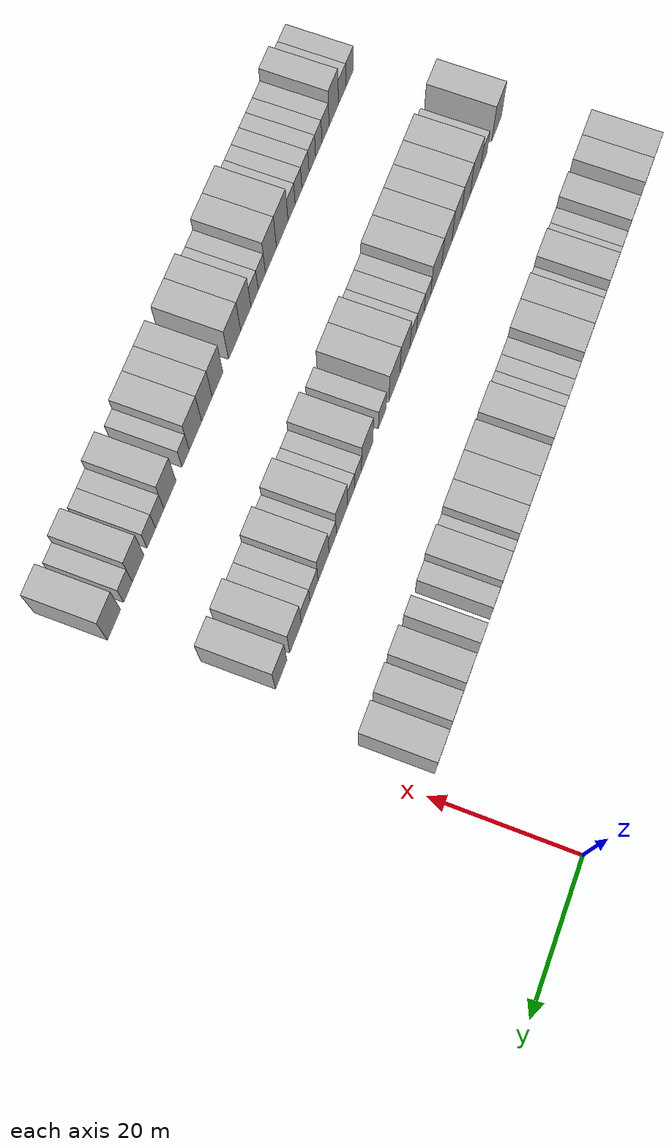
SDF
<sdf version="1.6">
 <world name="default">
  <model name="building_65">
   <static>1</static>
   <pose>25.0000 -90.0520 0 0.000000 0.000000 0.000000</pose>
   <link name="link">
    <pose>0 0 4.50 0 0 0</pose>
    <collision name="collision"><geometry><box><size>10.0000 4.0459 9.0000</size></box></geometry></collision>
    <visual name="visual">
     <cast_shadows>0</cast_shadows>
     <geometry><box><size>10.0000 4.0459 9.0000</size></box></geometry>
     <material>
      <script>
       <uri>model://HANNAS_wall/materials/scripts</uri>
       <uri>model://HANNAS_wall/materials/textures</uri>
       <name>vrc/HANNAS_wall</name>
      </script>
     </material>
    </visual>
   </link>
  </model>
  <model name="building_66">
   <static>1</static>
   <pose>25.0000 -86.0623 0 0.000000 0.000000 0.000000</pose>
   <link name="link">
    <pose>0 0 4.50 0 0 0</pose>
    <collision name="collision"><geometry><box><size>10.0000 3.9334 9.0000</size></box></geometry></collision>
    <visual name="visual">
     <cast_shadows>0</cast_shadows>
     <geometry><box><size>10.0000 3.9334 9.0000</size></box></geometry>
     <material>
      <script>
       <uri>model://HANNAS_wall/materials/scripts</uri>
       <uri>model://HANNAS_wall/materials/textures</uri>
       <name>vrc/HANNAS_wall</name>
      </script>
     </material>
    </visual>
   </link>
  </model>
  <model name="building_67">
   <static>1</static>
   <pose>25.0000 -80.1384 0 0.000000 0.000000 0.000000</pose>
   <link name="link">
    <pose>0 0 4.50 0 0 0</pose>
    <collision name="collision"><geometry><box><size>10.0000 3.9143 9.0000</size></box></geometry></collision>
    <visual name="visual">
     <cast_shadows>0</cast_shadows>
     <geometry><box><size>10.0000 3.9143 9.0000</size></box></geometry>
     <material>
      <script>
       <uri>model://HANNAS_wall/materials/scripts</uri>
       <uri>model://HANNAS_wall/materials/textures</uri>
       <name>vrc/HANNAS_wall</name>
      </script>
     </material>
    </visual>
   </link>
  </model>
  <model name="building_68">
   <static>1</static>
   <pose>25.0000 -76.9751 0 0.000000 0.000000 0.000000</pose>
   <link name="link">
    <pose>0 0 3.00 0 0 0</pose>
    <collision name="collision"><geometry><box><size>10.0000 2.4124 6.0000</size></box></geometry></collision>
    <visual name="visual">
     <cast_shadows>0</cast_shadows>
     <geometry><box><size>10.0000 2.4124 6.0000</size></box></geometry>
     <material>
      <script>
       <uri>model://HANNAS_wall/materials/scripts</uri>
       <uri>model://HANNAS_wall/materials/textures</uri>
       <name>vrc/HANNAS_wall</name>
      </script>
     </material>
    </visual>
   </link>
  </model>
  <model name="building_69">
   <static>1</static>
   <pose>25.0000 -74.5090 0 0.000000 0.000000 0.000000</pose>
   <link name="link">
    <pose>0 0 3.00 0 0 0</pose>
    <collision name="collision"><geometry><box><size>10.0000 2.5198 6.0000</size></box></geometry></collision>
    <visual name="visual">
     <cast_shadows>0</cast_shadows>
     <geometry><box><size>10.0000 2.5198 6.0000</size></box></geometry>
     <material>
      <script>
       <uri>model://HANNAS_wall/materials/scripts</uri>
       <uri>model://HANNAS_wall/materials/textures</uri>
       <name>vrc/HANNAS_wall</name>
      </script>
     </material>
    </visual>
   </link>
  </model>
  <model name="building_70">
   <static>1</static>
   <pose>25.0000 -71.1109 0 0.000000 0.000000 0.000000</pose>
   <link name="link">
    <pose>0 0 4.50 0 0 0</pose>
    <collision name="collision"><geometry><box><size>10.0000 4.2764 9.0000</size></box></geometry></collision>
    <visual name="visual">
     <cast_shadows>0</cast_shadows>
     <geometry><box><size>10.0000 4.2764 9.0000</size></box></geometry>
     <material>
      <script>
       <uri>model://HANNAS_wall/materials/scripts</uri>
       <uri>model://HANNAS_wall/materials/textures</uri>
       <name>vrc/HANNAS_wall</name>
      </script>
     </material>
    </visual>
   </link>
  </model>
  <model name="building_71">
   <static>1</static>
   <pose>25.0000 -67.7124 0 0.000000 0.000000 0.000000</pose>
   <link name="link">
    <pose>0 0 3.00 0 0 0</pose>
    <collision name="collision"><geometry><box><size>10.0000 2.5205 6.0000</size></box></geometry></collision>
    <visual name="visual">
     <cast_shadows>0</cast_shadows>
     <geometry><box><size>10.0000 2.5205 6.0000</size></box></geometry>
     <material>
      <script>
       <uri>model://HANNAS_wall/materials/scripts</uri>
       <uri>model://HANNAS_wall/materials/textures</uri>
       <name>vrc/HANNAS_wall</name>
      </script>
     </material>
    </visual>
   </link>
  </model>
  <model name="building_72">
   <static>1</static>
   <pose>25.0000 -64.5187 0 0.000000 0.000000 0.000000</pose>
   <link name="link">
    <pose>0 0 4.50 0 0 0</pose>
    <collision name="collision"><geometry><box><size>10.0000 3.8669 9.0000</size></box></geometry></collision>
    <visual name="visual">
     <cast_shadows>0</cast_shadows>
     <geometry><box><size>10.0000 3.8669 9.0000</size></box></geometry>
     <material>
      <script>
       <uri>model://HANNAS_wall/materials/scripts</uri>
       <uri>model://HANNAS_wall/materials/textures</uri>
       <name>vrc/HANNAS_wall</name>
      </script>
     </material>
    </visual>
   </link>
  </model>
  <model name="building_73">
   <static>1</static>
   <pose>25.0000 -60.4254 0 0.000000 0.000000 0.000000</pose>
   <link name="link">
    <pose>0 0 4.50 0 0 0</pose>
    <collision name="collision"><geometry><box><size>10.0000 4.3197 9.0000</size></box></geometry></collision>
    <visual name="visual">
     <cast_shadows>0</cast_shadows>
     <geometry><box><size>10.0000 4.3197 9.0000</size></box></geometry>
     <material>
      <script>
       <uri>model://HANNAS_wall/materials/scripts</uri>
       <uri>model://HANNAS_wall/materials/textures</uri>
       <name>vrc/HANNAS_wall</name>
      </script>
     </material>
    </visual>
   </link>
  </model>
  <model name="building_74">
   <static>1</static>
   <pose>25.0000 -56.9800 0 0.000000 0.000000 0.000000</pose>
   <link name="link">
    <pose>0 0 3.00 0 0 0</pose>
    <collision name="collision"><geometry><box><size>10.0000 2.5711 6.0000</size></box></geometry></collision>
    <visual name="visual">
     <cast_shadows>0</cast_shadows>
     <geometry><box><size>10.0000 2.5711 6.0000</size></box></geometry>
     <material>
      <script>
       <uri>model://HANNAS_wall/materials/scripts</uri>
       <uri>model://HANNAS_wall/materials/textures</uri>
       <name>vrc/HANNAS_wall</name>
      </script>
     </material>
    </visual>
   </link>
  </model>
  <model name="building_75">
   <static>1</static>
   <pose>25.0000 -54.4780 0 0.000000 0.000000 0.000000</pose>
   <link name="link">
    <pose>0 0 3.00 0 0 0</pose>
    <collision name="collision"><geometry><box><size>10.0000 2.4328 6.0000</size></box></geometry></collision>
    <visual name="visual">
     <cast_shadows>0</cast_shadows>
     <geometry><box><size>10.0000 2.4328 6.0000</size></box></geometry>
     <material>
      <script>
       <uri>model://HANNAS_wall/materials/scripts</uri>
       <uri>model://HANNAS_wall/materials/textures</uri>
       <name>vrc/HANNAS_wall</name>
      </script>
     </material>
    </visual>
   </link>
  </model>
  <model name="building_76">
   <static>1</static>
   <pose>25.0000 -51.8587 0 0.000000 0.000000 0.000000</pose>
   <link name="link">
    <pose>0 0 3.00 0 0 0</pose>
    <collision name="collision"><geometry><box><size>10.0000 2.8059 6.0000</size></box></geometry></collision>
    <visual name="visual">
     <cast_shadows>0</cast_shadows>
     <geometry><box><size>10.0000 2.8059 6.0000</size></box></geometry>
     <material>
      <script>
       <uri>model://HANNAS_wall/materials/scripts</uri>
       <uri>model://HANNAS_wall/materials/textures</uri>
       <name>vrc/HANNAS_wall</name>
      </script>
     </material>
    </visual>
   </link>
  </model>
  <model name="building_77">
   <static>1</static>
   <pose>25.0000 -48.2150 0 0.000000 0.000000 0.000000</pose>
   <link name="link">
    <pose>0 0 4.50 0 0 0</pose>
    <collision name="collision"><geometry><box><size>10.0000 4.4815 9.0000</size></box></geometry></collision>
    <visual name="visual">
     <cast_shadows>0</cast_shadows>
     <geometry><box><size>10.0000 4.4815 9.0000</size></box></geometry>
     <material>
      <script>
       <uri>model://HANNAS_wall/materials/scripts</uri>
       <uri>model://HANNAS_wall/materials/textures</uri>
       <name>vrc/HANNAS_wall</name>
      </script>
     </material>
    </visual>
   </link>
  </model>
  <model name="building_78">
   <static>1</static>
   <pose>25.0000 -42.8183 0 0.000000 0.000000 0.000000</pose>
   <link name="link">
    <pose>0 0 4.50 0 0 0</pose>
    <collision name="collision"><geometry><box><size>10.0000 4.3119 9.0000</size></box></geometry></collision>
    <visual name="visual">
     <cast_shadows>0</cast_shadows>
     <geometry><box><size>10.0000 4.3119 9.0000</size></box></geometry>
     <material>
      <script>
       <uri>model://HANNAS_wall/materials/scripts</uri>
       <uri>model://HANNAS_wall/materials/textures</uri>
       <name>vrc/HANNAS_wall</name>
      </script>
     </material>
    </visual>
   </link>
  </model>
  <model name="building_79">
   <static>1</static>
   <pose>25.0000 -38.6219 0 0.000000 0.000000 0.000000</pose>
   <link name="link">
    <pose>0 0 4.50 0 0 0</pose>
    <collision name="collision"><geometry><box><size>10.0000 4.0809 9.0000</size></box></geometry></collision>
    <visual name="visual">
     <cast_shadows>0</cast_shadows>
     <geometry><box><size>10.0000 4.0809 9.0000</size></box></geometry>
     <material>
      <script>
       <uri>model://HANNAS_wall/materials/scripts</uri>
       <uri>model://HANNAS_wall/materials/textures</uri>
       <name>vrc/HANNAS_wall</name>
      </script>
     </material>
    </visual>
   </link>
  </model>
  <model name="building_80">
   <static>1</static>
   <pose>25.0000 -34.6649 0 0.000000 0.000000 0.000000</pose>
   <link name="link">
    <pose>0 0 4.50 0 0 0</pose>
    <collision name="collision"><geometry><box><size>10.0000 3.8331 9.0000</size></box></geometry></collision>
    <visual name="visual">
     <cast_shadows>0</cast_shadows>
     <geometry><box><size>10.0000 3.8331 9.0000</size></box></geometry>
     <material>
      <script>
       <uri>model://HANNAS_wall/materials/scripts</uri>
       <uri>model://HANNAS_wall/materials/textures</uri>
       <name>vrc/HANNAS_wall</name>
      </script>
     </material>
    </visual>
   </link>
  </model>
  <model name="building_81">
   <static>1</static>
   <pose>25.0000 -31.5385 0 0.000000 0.000000 0.000000</pose>
   <link name="link">
    <pose>0 0 3.00 0 0 0</pose>
    <collision name="collision"><geometry><box><size>10.0000 2.4197 6.0000</size></box></geometry></collision>
    <visual name="visual">
     <cast_shadows>0</cast_shadows>
     <geometry><box><size>10.0000 2.4197 6.0000</size></box></geometry>
     <material>
      <script>
       <uri>model://HANNAS_wall/materials/scripts</uri>
       <uri>model://HANNAS_wall/materials/textures</uri>
       <name>vrc/HANNAS_wall</name>
      </script>
     </material>
    </visual>
   </link>
  </model>
  <model name="building_82">
   <static>1</static>
   <pose>25.0000 -28.3246 0 0.000000 0.000000 0.000000</pose>
   <link name="link">
    <pose>0 0 4.50 0 0 0</pose>
    <collision name="collision"><geometry><box><size>10.0000 4.0081 9.0000</size></box></geometry></collision>
    <visual name="visual">
     <cast_shadows>0</cast_shadows>
     <geometry><box><size>10.0000 4.0081 9.0000</size></box></geometry>
     <material>
      <script>
       <uri>model://HANNAS_wall/materials/scripts</uri>
       <uri>model://HANNAS_wall/materials/textures</uri>
       <name>vrc/HANNAS_wall</name>
      </script>
     </material>
    </visual>
   </link>
  </model>
  <model name="building_83">
   <static>1</static>
   <pose>25.0000 -24.9534 0 0.000000 0.000000 0.000000</pose>
   <link name="link">
    <pose>0 0 3.00 0 0 0</pose>
    <collision name="collision"><geometry><box><size>10.0000 2.7344 6.0000</size></box></geometry></collision>
    <visual name="visual">
     <cast_shadows>0</cast_shadows>
     <geometry><box><size>10.0000 2.7344 6.0000</size></box></geometry>
     <material>
      <script>
       <uri>model://HANNAS_wall/materials/scripts</uri>
       <uri>model://HANNAS_wall/materials/textures</uri>
       <name>vrc/HANNAS_wall</name>
      </script>
     </material>
    </visual>
   </link>
  </model>
  <model name="building_84">
   <static>1</static>
   <pose>25.0000 -20.2362 0 0.000000 0.000000 0.000000</pose>
   <link name="link">
    <pose>0 0 3.00 0 0 0</pose>
    <collision name="collision"><geometry><box><size>10.0000 2.7000 6.0000</size></box></geometry></collision>
    <visual name="visual">
     <cast_shadows>0</cast_shadows>
     <geometry><box><size>10.0000 2.7000 6.0000</size></box></geometry>
     <material>
      <script>
       <uri>model://HANNAS_wall/materials/scripts</uri>
       <uri>model://HANNAS_wall/materials/textures</uri>
       <name>vrc/HANNAS_wall</name>
      </script>
     </material>
    </visual>
   </link>
  </model>
  <model name="building_85">
   <static>1</static>
   <pose>25.0000 -14.9564 0 0.000000 0.000000 0.000000</pose>
   <link name="link">
    <pose>0 0 4.50 0 0 0</pose>
    <collision name="collision"><geometry><box><size>10.0000 3.8596 9.0000</size></box></geometry></collision>
    <visual name="visual">
     <cast_shadows>0</cast_shadows>
     <geometry><box><size>10.0000 3.8596 9.0000</size></box></geometry>
     <material>
      <script>
       <uri>model://HANNAS_wall/materials/scripts</uri>
       <uri>model://HANNAS_wall/materials/textures</uri>
       <name>vrc/HANNAS_wall</name>
      </script>
     </material>
    </visual>
   </link>
  </model>
  <model name="building_86">
   <static>1</static>
   <pose>25.0000 -10.0906 0 0.000000 0.000000 0.000000</pose>
   <link name="link">
    <pose>0 0 4.50 0 0 0</pose>
    <collision name="collision"><geometry><box><size>10.0000 3.8721 9.0000</size></box></geometry></collision>
    <visual name="visual">
     <cast_shadows>0</cast_shadows>
     <geometry><box><size>10.0000 3.8721 9.0000</size></box></geometry>
     <material>
      <script>
       <uri>model://HANNAS_wall/materials/scripts</uri>
       <uri>model://HANNAS_wall/materials/textures</uri>
       <name>vrc/HANNAS_wall</name>
      </script>
     </material>
    </visual>
   </link>
  </model>
  <model name="building_87">
   <static>1</static>
   <pose>25.0000 -5.0628 0 0.000000 0.000000 0.000000</pose>
   <link name="link">
    <pose>0 0 4.50 0 0 0</pose>
    <collision name="collision"><geometry><box><size>10.0000 4.1833 9.0000</size></box></geometry></collision>
    <visual name="visual">
     <cast_shadows>0</cast_shadows>
     <geometry><box><size>10.0000 4.1833 9.0000</size></box></geometry>
     <material>
      <script>
       <uri>model://HANNAS_wall/materials/scripts</uri>
       <uri>model://HANNAS_wall/materials/textures</uri>
       <name>vrc/HANNAS_wall</name>
      </script>
     </material>
    </visual>
   </link>
  </model>
  <model name="building_251">
   <static>1</static>
   <pose>47.0000 -90.0598 0 0.000000 0.000000 0.000000</pose>
   <link name="link">
    <pose>0 0 4.50 0 0 0</pose>
    <collision name="collision"><geometry><box><size>10.0000 4.2010 9.0000</size></box></geometry></collision>
    <visual name="visual">
     <cast_shadows>0</cast_shadows>
     <geometry><box><size>10.0000 4.2010 9.0000</size></box></geometry>
     <material>
      <script>
       <uri>model://HANNAS_wall/materials/scripts</uri>
       <uri>model://HANNAS_wall/materials/textures</uri>
       <name>vrc/HANNAS_wall</name>
      </script>
     </material>
    </visual>
   </link>
  </model>
  <model name="building_252">
   <static>1</static>
   <pose>47.0000 -84.5554 0 0.000000 0.000000 0.000000</pose>
   <link name="link">
    <pose>0 0 3.00 0 0 0</pose>
    <collision name="collision"><geometry><box><size>10.0000 2.8078 6.0000</size></box></geometry></collision>
    <visual name="visual">
     <cast_shadows>0</cast_shadows>
     <geometry><box><size>10.0000 2.8078 6.0000</size></box></geometry>
     <material>
      <script>
       <uri>model://HANNAS_wall/materials/scripts</uri>
       <uri>model://HANNAS_wall/materials/textures</uri>
       <name>vrc/HANNAS_wall</name>
      </script>
     </material>
    </visual>
   </link>
  </model>
  <model name="building_253">
   <static>1</static>
   <pose>47.0000 -81.0309 0 0.000000 0.000000 0.000000</pose>
   <link name="link">
    <pose>0 0 4.50 0 0 0</pose>
    <collision name="collision"><geometry><box><size>10.0000 4.2413 9.0000</size></box></geometry></collision>
    <visual name="visual">
     <cast_shadows>0</cast_shadows>
     <geometry><box><size>10.0000 4.2413 9.0000</size></box></geometry>
     <material>
      <script>
       <uri>model://HANNAS_wall/materials/scripts</uri>
       <uri>model://HANNAS_wall/materials/textures</uri>
       <name>vrc/HANNAS_wall</name>
      </script>
     </material>
    </visual>
   </link>
  </model>
  <model name="building_254">
   <static>1</static>
   <pose>47.0000 -76.9979 0 0.000000 0.000000 0.000000</pose>
   <link name="link">
    <pose>0 0 4.50 0 0 0</pose>
    <collision name="collision"><geometry><box><size>10.0000 3.8247 9.0000</size></box></geometry></collision>
    <visual name="visual">
     <cast_shadows>0</cast_shadows>
     <geometry><box><size>10.0000 3.8247 9.0000</size></box></geometry>
     <material>
      <script>
       <uri>model://HANNAS_wall/materials/scripts</uri>
       <uri>model://HANNAS_wall/materials/textures</uri>
       <name>vrc/HANNAS_wall</name>
      </script>
     </material>
    </visual>
   </link>
  </model>
  <model name="building_255">
   <static>1</static>
   <pose>47.0000 -73.2284 0 0.000000 0.000000 0.000000</pose>
   <link name="link">
    <pose>0 0 4.50 0 0 0</pose>
    <collision name="collision"><geometry><box><size>10.0000 3.7142 9.0000</size></box></geometry></collision>
    <visual name="visual">
     <cast_shadows>0</cast_shadows>
     <geometry><box><size>10.0000 3.7142 9.0000</size></box></geometry>
     <material>
      <script>
       <uri>model://HANNAS_wall/materials/scripts</uri>
       <uri>model://HANNAS_wall/materials/textures</uri>
       <name>vrc/HANNAS_wall</name>
      </script>
     </material>
    </visual>
   </link>
  </model>
  <model name="building_256">
   <static>1</static>
   <pose>47.0000 -69.2564 0 0.000000 0.000000 0.000000</pose>
   <link name="link">
    <pose>0 0 4.50 0 0 0</pose>
    <collision name="collision"><geometry><box><size>10.0000 4.2298 9.0000</size></box></geometry></collision>
    <visual name="visual">
     <cast_shadows>0</cast_shadows>
     <geometry><box><size>10.0000 4.2298 9.0000</size></box></geometry>
     <material>
      <script>
       <uri>model://HANNAS_wall/materials/scripts</uri>
       <uri>model://HANNAS_wall/materials/textures</uri>
       <name>vrc/HANNAS_wall</name>
      </script>
     </material>
    </visual>
   </link>
  </model>
  <model name="building_257">
   <static>1</static>
   <pose>47.0000 -64.9734 0 0.000000 0.000000 0.000000</pose>
   <link name="link">
    <pose>0 0 4.50 0 0 0</pose>
    <collision name="collision"><geometry><box><size>10.0000 4.3362 9.0000</size></box></geometry></collision>
    <visual name="visual">
     <cast_shadows>0</cast_shadows>
     <geometry><box><size>10.0000 4.3362 9.0000</size></box></geometry>
     <material>
      <script>
       <uri>model://HANNAS_wall/materials/scripts</uri>
       <uri>model://HANNAS_wall/materials/textures</uri>
       <name>vrc/HANNAS_wall</name>
      </script>
     </material>
    </visual>
   </link>
  </model>
  <model name="building_258">
   <static>1</static>
   <pose>47.0000 -61.5240 0 0.000000 0.000000 0.000000</pose>
   <link name="link">
    <pose>0 0 3.00 0 0 0</pose>
    <collision name="collision"><geometry><box><size>10.0000 2.5626 6.0000</size></box></geometry></collision>
    <visual name="visual">
     <cast_shadows>0</cast_shadows>
     <geometry><box><size>10.0000 2.5626 6.0000</size></box></geometry>
     <material>
      <script>
       <uri>model://HANNAS_wall/materials/scripts</uri>
       <uri>model://HANNAS_wall/materials/textures</uri>
       <name>vrc/HANNAS_wall</name>
      </script>
     </material>
    </visual>
   </link>
  </model>
  <model name="building_259">
   <static>1</static>
   <pose>47.0000 -58.7521 0 0.000000 0.000000 0.000000</pose>
   <link name="link">
    <pose>0 0 3.00 0 0 0</pose>
    <collision name="collision"><geometry><box><size>10.0000 2.9813 6.0000</size></box></geometry></collision>
    <visual name="visual">
     <cast_shadows>0</cast_shadows>
     <geometry><box><size>10.0000 2.9813 6.0000</size></box></geometry>
     <material>
      <script>
       <uri>model://HANNAS_wall/materials/scripts</uri>
       <uri>model://HANNAS_wall/materials/textures</uri>
       <name>vrc/HANNAS_wall</name>
      </script>
     </material>
    </visual>
   </link>
  </model>
  <model name="building_260">
   <static>1</static>
   <pose>47.0000 -55.9592 0 0.000000 0.000000 0.000000</pose>
   <link name="link">
    <pose>0 0 3.00 0 0 0</pose>
    <collision name="collision"><geometry><box><size>10.0000 2.6045 6.0000</size></box></geometry></collision>
    <visual name="visual">
     <cast_shadows>0</cast_shadows>
     <geometry><box><size>10.0000 2.6045 6.0000</size></box></geometry>
     <material>
      <script>
       <uri>model://HANNAS_wall/materials/scripts</uri>
       <uri>model://HANNAS_wall/materials/textures</uri>
       <name>vrc/HANNAS_wall</name>
      </script>
     </material>
    </visual>
   </link>
  </model>
  <model name="building_261">
   <static>1</static>
   <pose>47.0000 -52.7284 0 0.000000 0.000000 0.000000</pose>
   <link name="link">
    <pose>0 0 4.50 0 0 0</pose>
    <collision name="collision"><geometry><box><size>10.0000 3.8572 9.0000</size></box></geometry></collision>
    <visual name="visual">
     <cast_shadows>0</cast_shadows>
     <geometry><box><size>10.0000 3.8572 9.0000</size></box></geometry>
     <material>
      <script>
       <uri>model://HANNAS_wall/materials/scripts</uri>
       <uri>model://HANNAS_wall/materials/textures</uri>
       <name>vrc/HANNAS_wall</name>
      </script>
     </material>
    </visual>
   </link>
  </model>
  <model name="building_262">
   <static>1</static>
   <pose>47.0000 -48.6693 0 0.000000 0.000000 0.000000</pose>
   <link name="link">
    <pose>0 0 4.50 0 0 0</pose>
    <collision name="collision"><geometry><box><size>10.0000 4.2609 9.0000</size></box></geometry></collision>
    <visual name="visual">
     <cast_shadows>0</cast_shadows>
     <geometry><box><size>10.0000 4.2609 9.0000</size></box></geometry>
     <material>
      <script>
       <uri>model://HANNAS_wall/materials/scripts</uri>
       <uri>model://HANNAS_wall/materials/textures</uri>
       <name>vrc/HANNAS_wall</name>
      </script>
     </material>
    </visual>
   </link>
  </model>
  <model name="building_263">
   <static>1</static>
   <pose>47.0000 -44.0747 0 0.000000 0.000000 0.000000</pose>
   <link name="link">
    <pose>0 0 3.00 0 0 0</pose>
    <collision name="collision"><geometry><box><size>10.0000 2.9284 6.0000</size></box></geometry></collision>
    <visual name="visual">
     <cast_shadows>0</cast_shadows>
     <geometry><box><size>10.0000 2.9284 6.0000</size></box></geometry>
     <material>
      <script>
       <uri>model://HANNAS_wall/materials/scripts</uri>
       <uri>model://HANNAS_wall/materials/textures</uri>
       <name>vrc/HANNAS_wall</name>
      </script>
     </material>
    </visual>
   </link>
  </model>
  <model name="building_264">
   <static>1</static>
   <pose>47.0000 -38.4750 0 0.000000 0.000000 0.000000</pose>
   <link name="link">
    <pose>0 0 4.50 0 0 0</pose>
    <collision name="collision"><geometry><box><size>10.0000 4.2710 9.0000</size></box></geometry></collision>
    <visual name="visual">
     <cast_shadows>0</cast_shadows>
     <geometry><box><size>10.0000 4.2710 9.0000</size></box></geometry>
     <material>
      <script>
       <uri>model://HANNAS_wall/materials/scripts</uri>
       <uri>model://HANNAS_wall/materials/textures</uri>
       <name>vrc/HANNAS_wall</name>
      </script>
     </material>
    </visual>
   </link>
  </model>
  <model name="building_265">
   <static>1</static>
   <pose>47.0000 -35.0592 0 0.000000 0.000000 0.000000</pose>
   <link name="link">
    <pose>0 0 3.00 0 0 0</pose>
    <collision name="collision"><geometry><box><size>10.0000 2.5608 6.0000</size></box></geometry></collision>
    <visual name="visual">
     <cast_shadows>0</cast_shadows>
     <geometry><box><size>10.0000 2.5608 6.0000</size></box></geometry>
     <material>
      <script>
       <uri>model://HANNAS_wall/materials/scripts</uri>
       <uri>model://HANNAS_wall/materials/textures</uri>
       <name>vrc/HANNAS_wall</name>
      </script>
     </material>
    </visual>
   </link>
  </model>
  <model name="building_266">
   <static>1</static>
   <pose>47.0000 -32.5219 0 0.000000 0.000000 0.000000</pose>
   <link name="link">
    <pose>0 0 3.00 0 0 0</pose>
    <collision name="collision"><geometry><box><size>10.0000 2.5137 6.0000</size></box></geometry></collision>
    <visual name="visual">
     <cast_shadows>0</cast_shadows>
     <geometry><box><size>10.0000 2.5137 6.0000</size></box></geometry>
     <material>
      <script>
       <uri>model://HANNAS_wall/materials/scripts</uri>
       <uri>model://HANNAS_wall/materials/textures</uri>
       <name>vrc/HANNAS_wall</name>
      </script>
     </material>
    </visual>
   </link>
  </model>
  <model name="building_267">
   <static>1</static>
   <pose>47.0000 -29.2039 0 0.000000 0.000000 0.000000</pose>
   <link name="link">
    <pose>0 0 4.50 0 0 0</pose>
    <collision name="collision"><geometry><box><size>10.0000 4.1222 9.0000</size></box></geometry></collision>
    <visual name="visual">
     <cast_shadows>0</cast_shadows>
     <geometry><box><size>10.0000 4.1222 9.0000</size></box></geometry>
     <material>
      <script>
       <uri>model://HANNAS_wall/materials/scripts</uri>
       <uri>model://HANNAS_wall/materials/textures</uri>
       <name>vrc/HANNAS_wall</name>
      </script>
     </material>
    </visual>
   </link>
  </model>
  <model name="building_268">
   <static>1</static>
   <pose>47.0000 -25.8201 0 0.000000 0.000000 0.000000</pose>
   <link name="link">
    <pose>0 0 3.00 0 0 0</pose>
    <collision name="collision"><geometry><box><size>10.0000 2.6454 6.0000</size></box></geometry></collision>
    <visual name="visual">
     <cast_shadows>0</cast_shadows>
     <geometry><box><size>10.0000 2.6454 6.0000</size></box></geometry>
     <material>
      <script>
       <uri>model://HANNAS_wall/materials/scripts</uri>
       <uri>model://HANNAS_wall/materials/textures</uri>
       <name>vrc/HANNAS_wall</name>
      </script>
     </material>
    </visual>
   </link>
  </model>
  <model name="building_269">
   <static>1</static>
   <pose>47.0000 -22.5444 0 0.000000 0.000000 0.000000</pose>
   <link name="link">
    <pose>0 0 4.50 0 0 0</pose>
    <collision name="collision"><geometry><box><size>10.0000 3.9060 9.0000</size></box></geometry></collision>
    <visual name="visual">
     <cast_shadows>0</cast_shadows>
     <geometry><box><size>10.0000 3.9060 9.0000</size></box></geometry>
     <material>
      <script>
       <uri>model://HANNAS_wall/materials/scripts</uri>
       <uri>model://HANNAS_wall/materials/textures</uri>
       <name>vrc/HANNAS_wall</name>
      </script>
     </material>
    </visual>
   </link>
  </model>
  <model name="building_270">
   <static>1</static>
   <pose>47.0000 -19.1807 0 0.000000 0.000000 0.000000</pose>
   <link name="link">
    <pose>0 0 3.00 0 0 0</pose>
    <collision name="collision"><geometry><box><size>10.0000 2.8215 6.0000</size></box></geometry></collision>
    <visual name="visual">
     <cast_shadows>0</cast_shadows>
     <geometry><box><size>10.0000 2.8215 6.0000</size></box></geometry>
     <material>
      <script>
       <uri>model://HANNAS_wall/materials/scripts</uri>
       <uri>model://HANNAS_wall/materials/textures</uri>
       <name>vrc/HANNAS_wall</name>
      </script>
     </material>
    </visual>
   </link>
  </model>
  <model name="building_271">
   <static>1</static>
   <pose>47.0000 -16.2714 0 0.000000 0.000000 0.000000</pose>
   <link name="link">
    <pose>0 0 3.00 0 0 0</pose>
    <collision name="collision"><geometry><box><size>10.0000 2.9971 6.0000</size></box></geometry></collision>
    <visual name="visual">
     <cast_shadows>0</cast_shadows>
     <geometry><box><size>10.0000 2.9971 6.0000</size></box></geometry>
     <material>
      <script>
       <uri>model://HANNAS_wall/materials/scripts</uri>
       <uri>model://HANNAS_wall/materials/textures</uri>
       <name>vrc/HANNAS_wall</name>
      </script>
     </material>
    </visual>
   </link>
  </model>
  <model name="building_272">
   <static>1</static>
   <pose>47.0000 -12.7643 0 0.000000 0.000000 0.000000</pose>
   <link name="link">
    <pose>0 0 4.50 0 0 0</pose>
    <collision name="collision"><geometry><box><size>10.0000 4.0172 9.0000</size></box></geometry></collision>
    <visual name="visual">
     <cast_shadows>0</cast_shadows>
     <geometry><box><size>10.0000 4.0172 9.0000</size></box></geometry>
     <material>
      <script>
       <uri>model://HANNAS_wall/materials/scripts</uri>
       <uri>model://HANNAS_wall/materials/textures</uri>
       <name>vrc/HANNAS_wall</name>
      </script>
     </material>
    </visual>
   </link>
  </model>
  <model name="building_273">
   <static>1</static>
   <pose>47.0000 -7.8146 0 0.000000 0.000000 0.000000</pose>
   <link name="link">
    <pose>0 0 4.50 0 0 0</pose>
    <collision name="collision"><geometry><box><size>10.0000 3.8822 9.0000</size></box></geometry></collision>
    <visual name="visual">
     <cast_shadows>0</cast_shadows>
     <geometry><box><size>10.0000 3.8822 9.0000</size></box></geometry>
     <material>
      <script>
       <uri>model://HANNAS_wall/materials/scripts</uri>
       <uri>model://HANNAS_wall/materials/textures</uri>
       <name>vrc/HANNAS_wall</name>
      </script>
     </material>
    </visual>
   </link>
  </model>
  <model name="building_440">
   <static>1</static>
   <pose>69.0000 -90.4206 0 0.000000 0.000000 0.000000</pose>
   <link name="link">
    <pose>0 0 3.00 0 0 0</pose>
    <collision name="collision"><geometry><box><size>10.0000 2.9805 6.0000</size></box></geometry></collision>
    <visual name="visual">
     <cast_shadows>0</cast_shadows>
     <geometry><box><size>10.0000 2.9805 6.0000</size></box></geometry>
     <material>
      <script>
       <uri>model://HANNAS_wall/materials/scripts</uri>
       <uri>model://HANNAS_wall/materials/textures</uri>
       <name>vrc/HANNAS_wall</name>
      </script>
     </material>
    </visual>
   </link>
  </model>
  <model name="building_441">
   <static>1</static>
   <pose>69.0000 -87.4670 0 0.000000 0.000000 0.000000</pose>
   <link name="link">
    <pose>0 0 3.00 0 0 0</pose>
    <collision name="collision"><geometry><box><size>10.0000 2.9267 6.0000</size></box></geometry></collision>
    <visual name="visual">
     <cast_shadows>0</cast_shadows>
     <geometry><box><size>10.0000 2.9267 6.0000</size></box></geometry>
     <material>
      <script>
       <uri>model://HANNAS_wall/materials/scripts</uri>
       <uri>model://HANNAS_wall/materials/textures</uri>
       <name>vrc/HANNAS_wall</name>
      </script>
     </material>
    </visual>
   </link>
  </model>
  <model name="building_442">
   <static>1</static>
   <pose>69.0000 -84.1479 0 0.000000 0.000000 0.000000</pose>
   <link name="link">
    <pose>0 0 4.50 0 0 0</pose>
    <collision name="collision"><geometry><box><size>10.0000 3.7115 9.0000</size></box></geometry></collision>
    <visual name="visual">
     <cast_shadows>0</cast_shadows>
     <geometry><box><size>10.0000 3.7115 9.0000</size></box></geometry>
     <material>
      <script>
       <uri>model://HANNAS_wall/materials/scripts</uri>
       <uri>model://HANNAS_wall/materials/textures</uri>
       <name>vrc/HANNAS_wall</name>
      </script>
     </material>
    </visual>
   </link>
  </model>
  <model name="building_443">
   <static>1</static>
   <pose>69.0000 -80.9042 0 0.000000 0.000000 0.000000</pose>
   <link name="link">
    <pose>0 0 3.00 0 0 0</pose>
    <collision name="collision"><geometry><box><size>10.0000 2.7760 6.0000</size></box></geometry></collision>
    <visual name="visual">
     <cast_shadows>0</cast_shadows>
     <geometry><box><size>10.0000 2.7760 6.0000</size></box></geometry>
     <material>
      <script>
       <uri>model://HANNAS_wall/materials/scripts</uri>
       <uri>model://HANNAS_wall/materials/textures</uri>
       <name>vrc/HANNAS_wall</name>
      </script>
     </material>
    </visual>
   </link>
  </model>
  <model name="building_444">
   <static>1</static>
   <pose>69.0000 -78.2868 0 0.000000 0.000000 0.000000</pose>
   <link name="link">
    <pose>0 0 3.00 0 0 0</pose>
    <collision name="collision"><geometry><box><size>10.0000 2.4589 6.0000</size></box></geometry></collision>
    <visual name="visual">
     <cast_shadows>0</cast_shadows>
     <geometry><box><size>10.0000 2.4589 6.0000</size></box></geometry>
     <material>
      <script>
       <uri>model://HANNAS_wall/materials/scripts</uri>
       <uri>model://HANNAS_wall/materials/textures</uri>
       <name>vrc/HANNAS_wall</name>
      </script>
     </material>
    </visual>
   </link>
  </model>
  <model name="building_445">
   <static>1</static>
   <pose>69.0000 -75.8073 0 0.000000 0.000000 0.000000</pose>
   <link name="link">
    <pose>0 0 3.00 0 0 0</pose>
    <collision name="collision"><geometry><box><size>10.0000 2.5001 6.0000</size></box></geometry></collision>
    <visual name="visual">
     <cast_shadows>0</cast_shadows>
     <geometry><box><size>10.0000 2.5001 6.0000</size></box></geometry>
     <material>
      <script>
       <uri>model://HANNAS_wall/materials/scripts</uri>
       <uri>model://HANNAS_wall/materials/textures</uri>
       <name>vrc/HANNAS_wall</name>
      </script>
     </material>
    </visual>
   </link>
  </model>
  <model name="building_446">
   <static>1</static>
   <pose>69.0000 -73.1821 0 0.000000 0.000000 0.000000</pose>
   <link name="link">
    <pose>0 0 3.00 0 0 0</pose>
    <collision name="collision"><geometry><box><size>10.0000 2.7502 6.0000</size></box></geometry></collision>
    <visual name="visual">
     <cast_shadows>0</cast_shadows>
     <geometry><box><size>10.0000 2.7502 6.0000</size></box></geometry>
     <material>
      <script>
       <uri>model://HANNAS_wall/materials/scripts</uri>
       <uri>model://HANNAS_wall/materials/textures</uri>
       <name>vrc/HANNAS_wall</name>
      </script>
     </material>
    </visual>
   </link>
  </model>
  <model name="building_447">
   <static>1</static>
   <pose>69.0000 -70.5421 0 0.000000 0.000000 0.000000</pose>
   <link name="link">
    <pose>0 0 3.00 0 0 0</pose>
    <collision name="collision"><geometry><box><size>10.0000 2.5298 6.0000</size></box></geometry></collision>
    <visual name="visual">
     <cast_shadows>0</cast_shadows>
     <geometry><box><size>10.0000 2.5298 6.0000</size></box></geometry>
     <material>
      <script>
       <uri>model://HANNAS_wall/materials/scripts</uri>
       <uri>model://HANNAS_wall/materials/textures</uri>
       <name>vrc/HANNAS_wall</name>
      </script>
     </material>
    </visual>
   </link>
  </model>
  <model name="building_448">
   <static>1</static>
   <pose>69.0000 -67.9342 0 0.000000 0.000000 0.000000</pose>
   <link name="link">
    <pose>0 0 3.00 0 0 0</pose>
    <collision name="collision"><geometry><box><size>10.0000 2.6859 6.0000</size></box></geometry></collision>
    <visual name="visual">
     <cast_shadows>0</cast_shadows>
     <geometry><box><size>10.0000 2.6859 6.0000</size></box></geometry>
     <material>
      <script>
       <uri>model://HANNAS_wall/materials/scripts</uri>
       <uri>model://HANNAS_wall/materials/textures</uri>
       <name>vrc/HANNAS_wall</name>
      </script>
     </material>
    </visual>
   </link>
  </model>
  <model name="building_449">
   <static>1</static>
   <pose>69.0000 -64.4322 0 0.000000 0.000000 0.000000</pose>
   <link name="link">
    <pose>0 0 4.50 0 0 0</pose>
    <collision name="collision"><geometry><box><size>10.0000 4.3180 9.0000</size></box></geometry></collision>
    <visual name="visual">
     <cast_shadows>0</cast_shadows>
     <geometry><box><size>10.0000 4.3180 9.0000</size></box></geometry>
     <material>
      <script>
       <uri>model://HANNAS_wall/materials/scripts</uri>
       <uri>model://HANNAS_wall/materials/textures</uri>
       <name>vrc/HANNAS_wall</name>
      </script>
     </material>
    </visual>
   </link>
  </model>
  <model name="building_450">
   <static>1</static>
   <pose>69.0000 -60.2265 0 0.000000 0.000000 0.000000</pose>
   <link name="link">
    <pose>0 0 4.50 0 0 0</pose>
    <collision name="collision"><geometry><box><size>10.0000 4.0935 9.0000</size></box></geometry></collision>
    <visual name="visual">
     <cast_shadows>0</cast_shadows>
     <geometry><box><size>10.0000 4.0935 9.0000</size></box></geometry>
     <material>
      <script>
       <uri>model://HANNAS_wall/materials/scripts</uri>
       <uri>model://HANNAS_wall/materials/textures</uri>
       <name>vrc/HANNAS_wall</name>
      </script>
     </material>
    </visual>
   </link>
  </model>
  <model name="building_451">
   <static>1</static>
   <pose>69.0000 -56.8596 0 0.000000 0.000000 0.000000</pose>
   <link name="link">
    <pose>0 0 3.00 0 0 0</pose>
    <collision name="collision"><geometry><box><size>10.0000 2.6403 6.0000</size></box></geometry></collision>
    <visual name="visual">
     <cast_shadows>0</cast_shadows>
     <geometry><box><size>10.0000 2.6403 6.0000</size></box></geometry>
     <material>
      <script>
       <uri>model://HANNAS_wall/materials/scripts</uri>
       <uri>model://HANNAS_wall/materials/textures</uri>
       <name>vrc/HANNAS_wall</name>
      </script>
     </material>
    </visual>
   </link>
  </model>
  <model name="building_452">
   <static>1</static>
   <pose>69.0000 -54.2126 0 0.000000 0.000000 0.000000</pose>
   <link name="link">
    <pose>0 0 3.00 0 0 0</pose>
    <collision name="collision"><geometry><box><size>10.0000 2.6537 6.0000</size></box></geometry></collision>
    <visual name="visual">
     <cast_shadows>0</cast_shadows>
     <geometry><box><size>10.0000 2.6537 6.0000</size></box></geometry>
     <material>
      <script>
       <uri>model://HANNAS_wall/materials/scripts</uri>
       <uri>model://HANNAS_wall/materials/textures</uri>
       <name>vrc/HANNAS_wall</name>
      </script>
     </material>
    </visual>
   </link>
  </model>
  <model name="building_453">
   <static>1</static>
   <pose>69.0000 -51.0305 0 0.000000 0.000000 0.000000</pose>
   <link name="link">
    <pose>0 0 4.50 0 0 0</pose>
    <collision name="collision"><geometry><box><size>10.0000 3.7104 9.0000</size></box></geometry></collision>
    <visual name="visual">
     <cast_shadows>0</cast_shadows>
     <geometry><box><size>10.0000 3.7104 9.0000</size></box></geometry>
     <material>
      <script>
       <uri>model://HANNAS_wall/materials/scripts</uri>
       <uri>model://HANNAS_wall/materials/textures</uri>
       <name>vrc/HANNAS_wall</name>
      </script>
     </material>
    </visual>
   </link>
  </model>
  <model name="building_454">
   <static>1</static>
   <pose>69.0000 -47.0065 0 0.000000 0.000000 0.000000</pose>
   <link name="link">
    <pose>0 0 4.50 0 0 0</pose>
    <collision name="collision"><geometry><box><size>10.0000 4.3377 9.0000</size></box></geometry></collision>
    <visual name="visual">
     <cast_shadows>0</cast_shadows>
     <geometry><box><size>10.0000 4.3377 9.0000</size></box></geometry>
     <material>
      <script>
       <uri>model://HANNAS_wall/materials/scripts</uri>
       <uri>model://HANNAS_wall/materials/textures</uri>
       <name>vrc/HANNAS_wall</name>
      </script>
     </material>
    </visual>
   </link>
  </model>
  <model name="building_455">
   <static>1</static>
   <pose>69.0000 -40.9612 0 0.000000 0.000000 0.000000</pose>
   <link name="link">
    <pose>0 0 4.50 0 0 0</pose>
    <collision name="collision"><geometry><box><size>10.0000 3.7528 9.0000</size></box></geometry></collision>
    <visual name="visual">
     <cast_shadows>0</cast_shadows>
     <geometry><box><size>10.0000 3.7528 9.0000</size></box></geometry>
     <material>
      <script>
       <uri>model://HANNAS_wall/materials/scripts</uri>
       <uri>model://HANNAS_wall/materials/textures</uri>
       <name>vrc/HANNAS_wall</name>
      </script>
     </material>
    </visual>
   </link>
  </model>
  <model name="building_456">
   <static>1</static>
   <pose>69.0000 -37.2639 0 0.000000 0.000000 0.000000</pose>
   <link name="link">
    <pose>0 0 4.50 0 0 0</pose>
    <collision name="collision"><geometry><box><size>10.0000 3.6420 9.0000</size></box></geometry></collision>
    <visual name="visual">
     <cast_shadows>0</cast_shadows>
     <geometry><box><size>10.0000 3.6420 9.0000</size></box></geometry>
     <material>
      <script>
       <uri>model://HANNAS_wall/materials/scripts</uri>
       <uri>model://HANNAS_wall/materials/textures</uri>
       <name>vrc/HANNAS_wall</name>
      </script>
     </material>
    </visual>
   </link>
  </model>
  <model name="building_457">
   <static>1</static>
   <pose>69.0000 -33.3091 0 0.000000 0.000000 0.000000</pose>
   <link name="link">
    <pose>0 0 4.50 0 0 0</pose>
    <collision name="collision"><geometry><box><size>10.0000 4.2675 9.0000</size></box></geometry></collision>
    <visual name="visual">
     <cast_shadows>0</cast_shadows>
     <geometry><box><size>10.0000 4.2675 9.0000</size></box></geometry>
     <material>
      <script>
       <uri>model://HANNAS_wall/materials/scripts</uri>
       <uri>model://HANNAS_wall/materials/textures</uri>
       <name>vrc/HANNAS_wall</name>
      </script>
     </material>
    </visual>
   </link>
  </model>
  <model name="building_458">
   <static>1</static>
   <pose>69.0000 -29.9345 0 0.000000 0.000000 0.000000</pose>
   <link name="link">
    <pose>0 0 3.00 0 0 0</pose>
    <collision name="collision"><geometry><box><size>10.0000 2.4816 6.0000</size></box></geometry></collision>
    <visual name="visual">
     <cast_shadows>0</cast_shadows>
     <geometry><box><size>10.0000 2.4816 6.0000</size></box></geometry>
     <material>
      <script>
       <uri>model://HANNAS_wall/materials/scripts</uri>
       <uri>model://HANNAS_wall/materials/textures</uri>
       <name>vrc/HANNAS_wall</name>
      </script>
     </material>
    </visual>
   </link>
  </model>
  <model name="building_459">
   <static>1</static>
   <pose>69.0000 -24.6596 0 0.000000 0.000000 0.000000</pose>
   <link name="link">
    <pose>0 0 4.50 0 0 0</pose>
    <collision name="collision"><geometry><box><size>10.0000 4.0682 9.0000</size></box></geometry></collision>
    <visual name="visual">
     <cast_shadows>0</cast_shadows>
     <geometry><box><size>10.0000 4.0682 9.0000</size></box></geometry>
     <material>
      <script>
       <uri>model://HANNAS_wall/materials/scripts</uri>
       <uri>model://HANNAS_wall/materials/textures</uri>
       <name>vrc/HANNAS_wall</name>
      </script>
     </material>
    </visual>
   </link>
  </model>
  <model name="building_460">
   <static>1</static>
   <pose>69.0000 -21.2373 0 0.000000 0.000000 0.000000</pose>
   <link name="link">
    <pose>0 0 3.00 0 0 0</pose>
    <collision name="collision"><geometry><box><size>10.0000 2.7765 6.0000</size></box></geometry></collision>
    <visual name="visual">
     <cast_shadows>0</cast_shadows>
     <geometry><box><size>10.0000 2.7765 6.0000</size></box></geometry>
     <material>
      <script>
       <uri>model://HANNAS_wall/materials/scripts</uri>
       <uri>model://HANNAS_wall/materials/textures</uri>
       <name>vrc/HANNAS_wall</name>
      </script>
     </material>
    </visual>
   </link>
  </model>
  <model name="building_461">
   <static>1</static>
   <pose>69.0000 -18.4474 0 0.000000 0.000000 0.000000</pose>
   <link name="link">
    <pose>0 0 3.00 0 0 0</pose>
    <collision name="collision"><geometry><box><size>10.0000 2.8032 6.0000</size></box></geometry></collision>
    <visual name="visual">
     <cast_shadows>0</cast_shadows>
     <geometry><box><size>10.0000 2.8032 6.0000</size></box></geometry>
     <material>
      <script>
       <uri>model://HANNAS_wall/materials/scripts</uri>
       <uri>model://HANNAS_wall/materials/textures</uri>
       <name>vrc/HANNAS_wall</name>
      </script>
     </material>
    </visual>
   </link>
  </model>
  <model name="building_462">
   <static>1</static>
   <pose>69.0000 -14.1687 0 0.000000 0.000000 0.000000</pose>
   <link name="link">
    <pose>0 0 4.50 0 0 0</pose>
    <collision name="collision"><geometry><box><size>10.0000 3.7543 9.0000</size></box></geometry></collision>
    <visual name="visual">
     <cast_shadows>0</cast_shadows>
     <geometry><box><size>10.0000 3.7543 9.0000</size></box></geometry>
     <material>
      <script>
       <uri>model://HANNAS_wall/materials/scripts</uri>
       <uri>model://HANNAS_wall/materials/textures</uri>
       <name>vrc/HANNAS_wall</name>
      </script>
     </material>
    </visual>
   </link>
  </model>
  <model name="building_463">
   <static>1</static>
   <pose>69.0000 -10.8704 0 0.000000 0.000000 0.000000</pose>
   <link name="link">
    <pose>0 0 3.00 0 0 0</pose>
    <collision name="collision"><geometry><box><size>10.0000 2.8423 6.0000</size></box></geometry></collision>
    <visual name="visual">
     <cast_shadows>0</cast_shadows>
     <geometry><box><size>10.0000 2.8423 6.0000</size></box></geometry>
     <material>
      <script>
       <uri>model://HANNAS_wall/materials/scripts</uri>
       <uri>model://HANNAS_wall/materials/textures</uri>
       <name>vrc/HANNAS_wall</name>
      </script>
     </material>
    </visual>
   </link>
  </model>
  <model name="building_464">
   <static>1</static>
   <pose>69.0000 -6.3571 0 0.000000 0.000000 0.000000</pose>
   <link name="link">
    <pose>0 0 4.50 0 0 0</pose>
    <collision name="collision"><geometry><box><size>10.0000 4.1843 9.0000</size></box></geometry></collision>
    <visual name="visual">
     <cast_shadows>0</cast_shadows>
     <geometry><box><size>10.0000 4.1843 9.0000</size></box></geometry>
     <material>
      <script>
       <uri>model://HANNAS_wall/materials/scripts</uri>
       <uri>model://HANNAS_wall/materials/textures</uri>
       <name>vrc/HANNAS_wall</name>
      </script>
     </material>
    </visual>
   </link>
  </model>
 </world>
</sdf>
